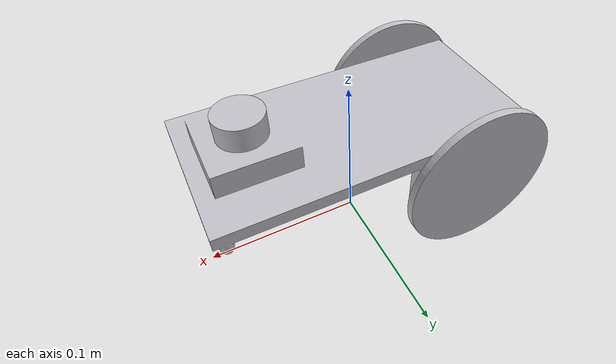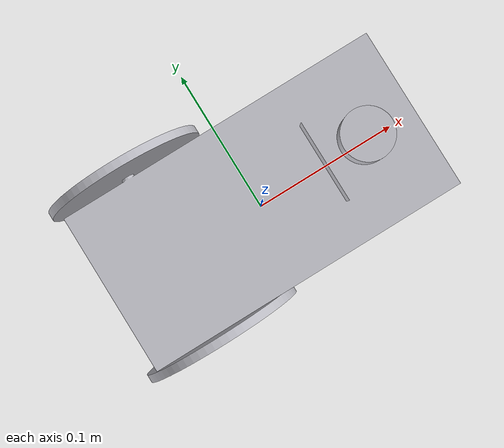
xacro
<?xml version="1.0" ?>
<robot name="Day3" xmlns:xacro="http://www.ros.org/wiki/xacro">

<xacro:include filename="$(find Day3_description)/urdf/materials.xacro" />
<xacro:include filename="$(find Day3_description)/urdf/Day3.trans" />
<xacro:include filename="$(find Day3_description)/urdf/Day3.gazebo" />
<link name="base_link">
  <inertial>
    <origin xyz="-0.0007135159114692553 6.252184428201031e-17 0.07001482387640728" rpy="0 0 0"/>
    <mass value="1.9983709068544875"/>
    <inertia ixx="0.002356" iyy="0.007892" izz="0.009479" ixy="0.0" iyz="0.0" ixz="-0.000654"/>
  </inertial>
  <visual>
    <origin xyz="0 0 0" rpy="0 0 0"/>
    <geometry>
      <mesh filename="package://Day3_description/meshes/base_link.stl" scale="0.001 0.001 0.001"/>
    </geometry>
    <material name="silver"/>
  </visual>
  <collision>
    <origin xyz="0 0 0" rpy="0 0 0"/>
    <geometry>
      <mesh filename="package://Day3_description/meshes/base_link.stl" scale="0.001 0.001 0.001"/>
    </geometry>
  </collision>
</link>

<link name="lidar_1">
  <inertial>
    <origin xyz="1.3877787807814457e-17 -2.220446049250313e-18 0.007500000000000007" rpy="0 0 0"/>
    <mass value="0.08323257036604459"/>
    <inertia ixx="6e-06" iyy="6e-06" izz="9e-06" ixy="-0.0" iyz="-0.0" ixz="0.0"/>
  </inertial>
  <visual>
    <origin xyz="-0.065 -0.0 -0.093" rpy="0 0 0"/>
    <geometry>
      <mesh filename="package://Day3_description/meshes/lidar_1.stl" scale="0.001 0.001 0.001"/>
    </geometry>
    <material name="silver"/>
  </visual>
  <collision>
    <origin xyz="-0.065 -0.0 -0.093" rpy="0 0 0"/>
    <geometry>
      <mesh filename="package://Day3_description/meshes/lidar_1.stl" scale="0.001 0.001 0.001"/>
    </geometry>
  </collision>
</link>

<link name="right_wheel_1">
  <inertial>
    <origin xyz="-3.469446951953614e-17 0.0025000000000000022 -2.0816681711721685e-17" rpy="0 0 0"/>
    <mass value="0.3082687791334984"/>
    <inertia ixx="0.000193" iyy="0.000385" izz="0.000193" ixy="0.0" iyz="0.0" ixz="0.0"/>
  </inertial>
  <visual>
    <origin xyz="0.06 0.055 -0.05" rpy="0 0 0"/>
    <geometry>
      <mesh filename="package://Day3_description/meshes/right_wheel_1.stl" scale="0.001 0.001 0.001"/>
    </geometry>
    <material name="silver"/>
  </visual>
  <collision>
    <origin xyz="0.06 0.055 -0.05" rpy="0 0 0"/>
    <geometry>
      <mesh filename="package://Day3_description/meshes/right_wheel_1.stl" scale="0.001 0.001 0.001"/>
    </geometry>
  </collision>
</link>

<link name="left_wheel_1">
  <inertial>
    <origin xyz="7.632783294297951e-17 0.002500000000000009 9.71445146547012e-17" rpy="0 0 0"/>
    <mass value="0.30826877913349837"/>
    <inertia ixx="0.000193" iyy="0.000385" izz="0.000193" ixy="-0.0" iyz="-0.0" ixz="0.0"/>
  </inertial>
  <visual>
    <origin xyz="0.06 -0.055 -0.05" rpy="0 0 0"/>
    <geometry>
      <mesh filename="package://Day3_description/meshes/left_wheel_1.stl" scale="0.001 0.001 0.001"/>
    </geometry>
    <material name="silver"/>
  </visual>
  <collision>
    <origin xyz="0.06 -0.055 -0.05" rpy="0 0 0"/>
    <geometry>
      <mesh filename="package://Day3_description/meshes/left_wheel_1.stl" scale="0.001 0.001 0.001"/>
    </geometry>
  </collision>
</link>

<joint name="Rev13" type="continuous">
  <origin xyz="0.065 0.0 0.093" rpy="0 0 0"/>
  <parent link="base_link"/>
  <child link="lidar_1"/>
  <axis xyz="0.0 0.0 1.0"/>
</joint>

<joint name="Rev14" type="continuous">
  <origin xyz="-0.06 -0.055 0.05" rpy="0 0 0"/>
  <parent link="base_link"/>
  <child link="right_wheel_1"/>
  <axis xyz="0.0 -1.0 0.0"/>
</joint>

<joint name="Rev15" type="continuous">
  <origin xyz="-0.06 0.055 0.05" rpy="0 0 0"/>
  <parent link="base_link"/>
  <child link="left_wheel_1"/>
  <axis xyz="0.0 -1.0 0.0"/>
</joint>

</robot>

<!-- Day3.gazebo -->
<robot name="Day3" xmlns:xacro="http://www.ros.org/wiki/xacro" >

<xacro:property name="body_color" value="Gazebo/Silver" />

<gazebo>
  <plugin name="control" filename="libgazebo_ros_control.so"/>
</gazebo>
<gazebo reference="base_link">
  <material>${body_color}</material>
  <mu1>0.2</mu1>
  <mu2>0.2</mu2>
  <selfCollide>true</selfCollide>
  <gravity>true</gravity>
</gazebo>

<gazebo reference="lidar_1">
  <material>${body_color}</material>
  <mu1>0.2</mu1>
  <mu2>0.2</mu2>
  <selfCollide>true</selfCollide>
</gazebo>

<gazebo reference="right_wheel_1">
  <material>${body_color}</material>
  <mu1>0.2</mu1>
  <mu2>0.2</mu2>
  <selfCollide>true</selfCollide>
</gazebo>

<gazebo reference="left_wheel_1">
  <material>${body_color}</material>
  <mu1>0.2</mu1>
  <mu2>0.2</mu2>
  <selfCollide>true</selfCollide>
</gazebo>

</robot>
